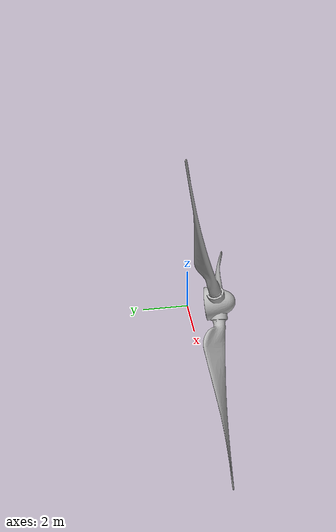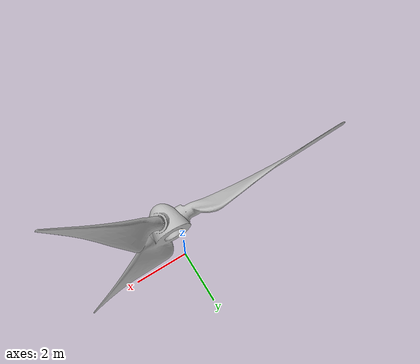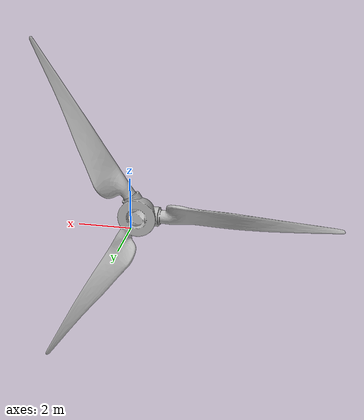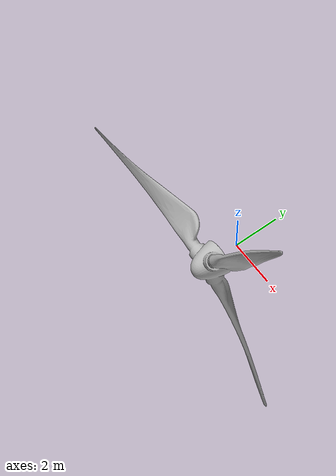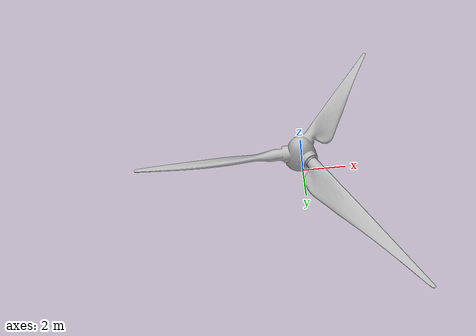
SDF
<?xml version="1.0" ?>
<sdf version="1.6">
  <model name="spinning_wind_turbine_blades">
    <static>true</static>
    <link name="link">
      <pose>0 0 0 1.570796327 0 0</pose>
      <visual name="visual">
        <geometry>
          <mesh>
            <uri>model://spinning_wind_turbine_blades/meshes/windmill_blades.obj</uri>
            <scale>1 1 1</scale>
          </mesh>
        </geometry>
      </visual>
    </link>
  </model>
</sdf>
